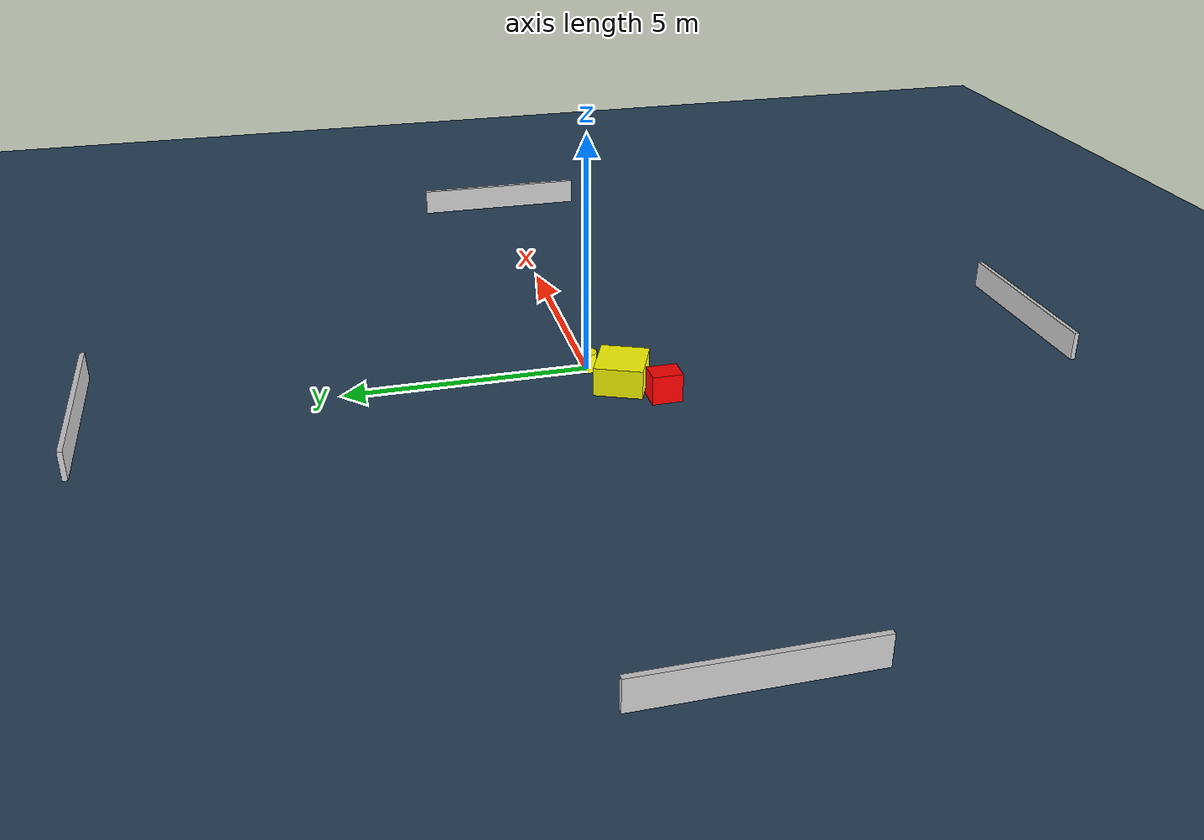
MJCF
<?xml version="1.0" ?>
<mujoco model="generated_environment">
  <option timestep="0.01" integrator="RK4" cone="elliptic"/>
  <default>
    <geom density="1"/>
  </default>
  <asset>
    <texture builtin="gradient" height="3072" name="skybox" rgb1="0.3 0.5 0.7" rgb2="0 0 0" type="skybox" width="512"/>
    <texture builtin="checker" height="300" name="groundplane" rgb1="0.2 0.3 0.4" rgb2="0.1 0.2 0.3" type="2d" width="300"/>
    <material name="groundplane" reflectance="0.2" texrepeat="5 5" texture="groundplane"/>
  </asset>
  <worldbody>
    <light dir="0 0 -1" directional="true" pos="0 0 1.5"/>
    <geom condim="3" friction="0.5 0.005 0.001" material="groundplane" name="floor" pos="0 0 0" size="0 0 0.05" type="plane"/>
    <body name="walls">
      <geom name="wall_1" condim="4" pos="-10.0 0.0 0.3" rgba="0.800000011920929 0.800000011920929 0.800000011920929 1.0" size="0.05 2.0 0.3" type="box"/>
      <geom name="wall_2" condim="4" pos="10.0 0.0 0.3" rgba="0.800000011920929 0.800000011920929 0.800000011920929 1.0" size="0.05 2.0 0.3" type="box"/>
      <geom name="wall_3" condim="4" pos="0.0 -10.0 0.3" rgba="0.800000011920929 0.800000011920929 0.800000011920929 1.0" size="2.0 0.05 0.3" type="box"/>
      <geom name="wall_4" condim="4" pos="0.0 10.0 0.3" rgba="0.800000011920929 0.800000011920929 0.800000011920929 1.0" size="2.0 0.05 0.3" type="box"/>
    </body>
    <body name="robot">
      <joint name="joint_x" type="slide" pos="0 0 0" axis="1 0 0"/>
      <joint name="joint_y" type="slide" pos="0 0 0" axis="0 1 0"/>
      <geom name="robot" type="cylinder" pos="0.0 0.0 0.2" size="0.2 0.2 0.0" mass="5.0" friction="1.0 0.005 0.0001" condim="4" rgba="1.0 1.0 0.0 1.0"/>
    </body>
    <body name="obstacle_1_movable">
      <geom name="obstacle_1_movable" condim="4" pos="-0.8392739803863714 -0.5094145515732251 0.3" euler="0 0 156.9285483129383" friction="0.0 0.005 0.001" rgba="1.0 1.0 0.0 1.0" size="0.5390673526052826 0.49670294618700067 0.3" type="box" mass="0.1"/>
      <joint type="free"/>
    </body>
    <body name="obstacle_2_static">
      <geom name="obstacle_2_static" condim="4" pos="-1.5655019162441648 -1.1821218980827233 0.3" euler="0 0 0.22139192972020716" friction="0.0 0.005 0.001" rgba="1.0 0.0 0.0 1.0" size="0.2422902240052332 0.3111717756157305 0.3" type="box"/>
    </body>
  </worldbody>
  <actuator>
    <motor name="actuator_x" joint="joint_x" gear="1" ctrlrange="-1 1"/>
    <motor name="actuator_y" joint="joint_y" gear="1" ctrlrange="-1 1"/>
  </actuator>
</mujoco>
